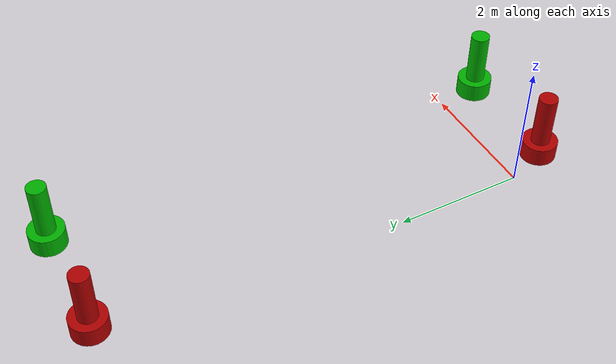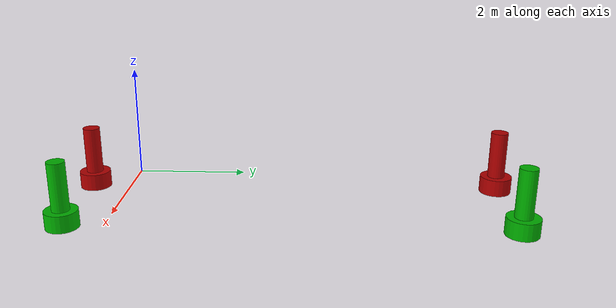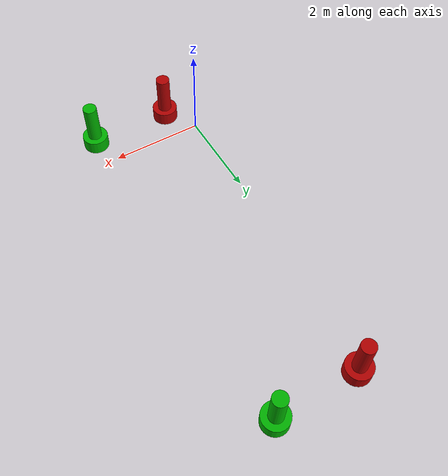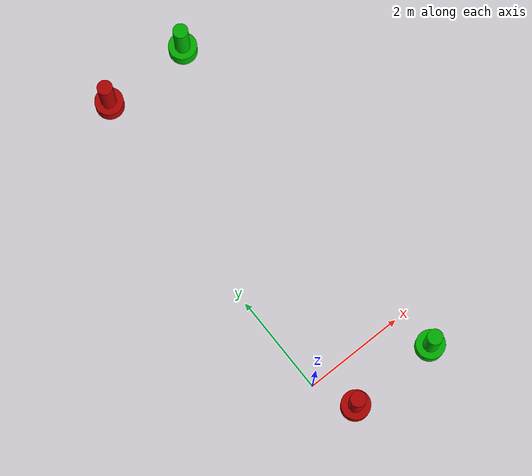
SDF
<sdf version="1.6">
 <world name="default">
  <include><uri>model://sun</uri></include>
  <gravity>0 0 -9.8</gravity>
  <magnetic_field>6e-06 2.3e-05 -4.2e-05</magnetic_field>
  <atmosphere type="adiabatic"/>
  <physics type="ode">
   <max_step_size>0.001</max_step_size>
   <real_time_factor>1</real_time_factor>
   <real_time_update_rate>1000</real_time_update_rate>
  </physics>
  <scene><ambient>0.4 0.4 0.4 1</ambient><background>0.7 0.7 0.7 1</background><shadows>1</shadows></scene>
  <spherical_coordinates>
   <surface_model>EARTH_WGS84</surface_model>
   <latitude_deg>0</latitude_deg>
   <longitude_deg>0</longitude_deg>
   <elevation>0</elevation>
   <heading_deg>0</heading_deg>
  </spherical_coordinates>
  <model name="Port Marker Buoy (red) #1">
   <link name="cylinder">
    <inertial>
     <mass>0.068793</mass>
     <inertia>
      <ixx>0.00543853</ixx>
      <ixy>0</ixy>
      <ixz>0</ixz>
      <iyy>0.00543853</iyy>
      <iyz>0</iyz>
      <izz>0.0006256</izz>
     </inertia>
    </inertial>
    <pose>0.396646 -0.775352 0.496472 0 -0 0</pose>
    <visual name="visual">
     <geometry><cylinder><radius>0.15</radius><length>1</length></cylinder></geometry>
     <material>
      <lighting>1</lighting>
      <script><uri>file://media/materials/scripts/gazebo.material</uri><name>Gazebo/Grey</name></script>
      <shader type="pixel"><normal_map>__default__</normal_map></shader>
      <ambient>0.3 0.3 0.3 1</ambient>
      <diffuse>0.7 0 0 1</diffuse>
      <specular>0.01 0.01 0.01 1</specular>
      <emissive>0 0 0 1</emissive>
     </material>
    </visual>
    <collision name="collision">
     <geometry><cylinder><radius>0.3</radius><length>0.945576</length></cylinder></geometry>
     <surface>
      <friction>
       <ode><mu>1</mu><mu2>1</mu2><fdir1>0 0 0</fdir1><slip1>0</slip1><slip2>0</slip2></ode>
       <torsional>
        <coefficient>1</coefficient>
        <patch_radius>0</patch_radius>
        <surface_radius>0</surface_radius>
        <use_patch_radius>1</use_patch_radius>
        <ode><slip>0</slip></ode>
       </torsional>
      </friction>
      <bounce><restitution_coefficient>0</restitution_coefficient><threshold>1e+06</threshold></bounce>
      <contact>
       <collide_without_contact>0</collide_without_contact>
       <collide_without_contact_bitmask>1</collide_without_contact_bitmask>
       <collide_bitmask>1</collide_bitmask>
       <ode>
        <soft_cfm>0</soft_cfm>
        <soft_erp>0.2</soft_erp>
        <kp>1e+13</kp>
        <kd>1</kd>
        <max_vel>0.01</max_vel>
        <min_depth>0</min_depth>
       </ode>
       <bullet>
        <split_impulse>1</split_impulse>
        <split_impulse_penetration_threshold>-0.01</split_impulse_penetration_threshold>
        <soft_cfm>0</soft_cfm>
        <soft_erp>0.2</soft_erp>
        <kp>1e+13</kp>
        <kd>1</kd>
       </bullet>
      </contact>
     </surface>
    </collision>
   </link>
   <link name="base">
    <inertial>
     <mass>0.0961519</mass>
     <inertia>
      <ixx>0.00264433</ixx>
      <ixy>0</ixy>
      <ixz>0</ixz>
      <iyy>0.00264433</iyy>
      <iyz>0</iyz>
      <izz>0.00382696</izz>
     </inertia>
    </inertial>
    <pose>0.399215 -0.772784 0.003528 0 -0 0</pose>
    <visual name="visual">
     <geometry><cylinder><radius>0.282139</radius><length>0.302013</length></cylinder></geometry>
     <material>
      <lighting>1</lighting>
      <script><uri>file://media/materials/scripts/gazebo.material</uri><name>Gazebo/Grey</name></script>
      <shader type="pixel"><normal_map>__default__</normal_map></shader>
      <ambient>0.3 0.3 0.3 1</ambient>
      <diffuse>0.7 0 0 1</diffuse>
      <specular>0.01 0.01 0.01 1</specular>
      <emissive>0 0 0 1</emissive>
     </material>
    </visual>
    <collision name="collision">
     <geometry><cylinder><radius>0.282139</radius><length>0.302013</length></cylinder></geometry>
     <surface>
      <friction>
       <ode><mu>1</mu><mu2>1</mu2><fdir1>0 0 0</fdir1><slip1>0</slip1><slip2>0</slip2></ode>
       <torsional>
        <coefficient>1</coefficient>
        <patch_radius>0</patch_radius>
        <surface_radius>0</surface_radius>
        <use_patch_radius>1</use_patch_radius>
        <ode><slip>0</slip></ode>
       </torsional>
      </friction>
      <bounce><restitution_coefficient>0</restitution_coefficient><threshold>1e+06</threshold></bounce>
      <contact>
       <collide_without_contact>0</collide_without_contact>
       <collide_without_contact_bitmask>1</collide_without_contact_bitmask>
       <collide_bitmask>1</collide_bitmask>
       <ode>
        <soft_cfm>0</soft_cfm>
        <soft_erp>0.2</soft_erp>
        <kp>1e+13</kp>
        <kd>1</kd>
        <max_vel>0.01</max_vel>
        <min_depth>0</min_depth>
       </ode>
       <bullet>
        <split_impulse>1</split_impulse>
        <split_impulse_penetration_threshold>-0.01</split_impulse_penetration_threshold>
        <soft_cfm>0</soft_cfm>
        <soft_erp>0.2</soft_erp>
        <kp>1e+13</kp>
        <kd>1</kd>
       </bullet>
      </contact>
     </surface>
    </collision>
   </link>
   <static>1</static>
  </model>
  <model name="Starboard Marker Buoy (green) #1">
   <link name="cylinder">
    <inertial>
     <mass>0.068793</mass>
     <inertia>
      <ixx>0.00543853</ixx>
      <ixy>0</ixy>
      <ixz>0</ixz>
      <iyy>0.00543853</iyy>
      <iyz>0</iyz>
      <izz>0.0006256</izz>
     </inertia>
    </inertial>
    <pose>0.396646 -0.775352 0.496472 0 -0 0</pose>
    <visual name="visual">
     <geometry><cylinder><radius>0.15</radius><length>1</length></cylinder></geometry>
     <material>
      <lighting>1</lighting>
      <script><uri>file://media/materials/scripts/gazebo.material</uri><name>Gazebo/Grey</name></script>
      <shader type="pixel"><normal_map>__default__</normal_map></shader>
      <ambient>0.3 0.3 0.3 1</ambient>
      <diffuse>0 0.7 0 1</diffuse>
      <specular>0.01 0.01 0.01 1</specular>
      <emissive>0 0 0 1</emissive>
     </material>
    </visual>
    <collision name="collision">
     <geometry><cylinder><radius>0.3</radius><length>0.945576</length></cylinder></geometry>
     <surface>
      <friction>
       <ode><mu>1</mu><mu2>1</mu2><fdir1>0 0 0</fdir1><slip1>0</slip1><slip2>0</slip2></ode>
       <torsional>
        <coefficient>1</coefficient>
        <patch_radius>0</patch_radius>
        <surface_radius>0</surface_radius>
        <use_patch_radius>1</use_patch_radius>
        <ode><slip>0</slip></ode>
       </torsional>
      </friction>
      <bounce><restitution_coefficient>0</restitution_coefficient><threshold>1e+06</threshold></bounce>
      <contact>
       <collide_without_contact>0</collide_without_contact>
       <collide_without_contact_bitmask>1</collide_without_contact_bitmask>
       <collide_bitmask>1</collide_bitmask>
       <ode>
        <soft_cfm>0</soft_cfm>
        <soft_erp>0.2</soft_erp>
        <kp>1e+13</kp>
        <kd>1</kd>
        <max_vel>0.01</max_vel>
        <min_depth>0</min_depth>
       </ode>
       <bullet>
        <split_impulse>1</split_impulse>
        <split_impulse_penetration_threshold>-0.01</split_impulse_penetration_threshold>
        <soft_cfm>0</soft_cfm>
        <soft_erp>0.2</soft_erp>
        <kp>1e+13</kp>
        <kd>1</kd>
       </bullet>
      </contact>
     </surface>
    </collision>
   </link>
   <link name="base">
    <inertial>
     <mass>0.0961519</mass>
     <inertia>
      <ixx>0.00264433</ixx>
      <ixy>0</ixy>
      <ixz>0</ixz>
      <iyy>0.00264433</iyy>
      <iyz>0</iyz>
      <izz>0.00382696</izz>
     </inertia>
    </inertial>
    <pose>0.399215 -0.772784 0.003528 0 -0 0</pose>
    <visual name="visual">
     <geometry><cylinder><radius>0.282139</radius><length>0.302013</length></cylinder></geometry>
     <material>
      <lighting>1</lighting>
      <script><uri>file://media/materials/scripts/gazebo.material</uri><name>Gazebo/Grey</name></script>
      <shader type="pixel"><normal_map>__default__</normal_map></shader>
      <ambient>0.3 0.3 0.3 1</ambient>
      <diffuse>0 0.7 0 1</diffuse>
      <specular>0.01 0.01 0.01 1</specular>
      <emissive>0 0 0 1</emissive>
     </material>
    </visual>
    <collision name="collision">
     <geometry><cylinder><radius>0.282139</radius><length>0.302013</length></cylinder></geometry>
     <surface>
      <friction>
       <ode><mu>1</mu><mu2>1</mu2><fdir1>0 0 0</fdir1><slip1>0</slip1><slip2>0</slip2></ode>
       <torsional>
        <coefficient>1</coefficient>
        <patch_radius>0</patch_radius>
        <surface_radius>0</surface_radius>
        <use_patch_radius>1</use_patch_radius>
        <ode><slip>0</slip></ode>
       </torsional>
      </friction>
      <bounce><restitution_coefficient>0</restitution_coefficient><threshold>1e+06</threshold></bounce>
      <contact>
       <collide_without_contact>0</collide_without_contact>
       <collide_without_contact_bitmask>1</collide_without_contact_bitmask>
       <collide_bitmask>1</collide_bitmask>
       <ode>
        <soft_cfm>0</soft_cfm>
        <soft_erp>0.2</soft_erp>
        <kp>1e+13</kp>
        <kd>1</kd>
        <max_vel>0.01</max_vel>
        <min_depth>0</min_depth>
       </ode>
       <bullet>
        <split_impulse>1</split_impulse>
        <split_impulse_penetration_threshold>-0.01</split_impulse_penetration_threshold>
        <soft_cfm>0</soft_cfm>
        <soft_erp>0.2</soft_erp>
        <kp>1e+13</kp>
        <kd>1</kd>
       </bullet>
      </contact>
     </surface>
    </collision>
   </link>
   <static>1</static>
   <pose>1.8 0 0 0 0 0</pose>
  </model>
  <model name="Port Marker Buoy (red) #2">
   <link name="cylinder">
    <inertial>
     <mass>0.068793</mass>
     <inertia>
      <ixx>0.00543853</ixx>
      <ixy>0</ixy>
      <ixz>0</ixz>
      <iyy>0.00543853</iyy>
      <iyz>0</iyz>
      <izz>0.0006256</izz>
     </inertia>
    </inertial>
    <pose>0.396646 -0.775352 0.496472 0 -0 0</pose>
    <visual name="visual">
     <geometry><cylinder><radius>0.15</radius><length>1</length></cylinder></geometry>
     <material>
      <lighting>1</lighting>
      <script><uri>file://media/materials/scripts/gazebo.material</uri><name>Gazebo/Grey</name></script>
      <shader type="pixel"><normal_map>__default__</normal_map></shader>
      <ambient>0.3 0.3 0.3 1</ambient>
      <diffuse>0.7 0 0 1</diffuse>
      <specular>0.01 0.01 0.01 1</specular>
      <emissive>0 0 0 1</emissive>
     </material>
    </visual>
    <collision name="collision">
     <geometry><cylinder><radius>0.3</radius><length>0.945576</length></cylinder></geometry>
     <surface>
      <friction>
       <ode><mu>1</mu><mu2>1</mu2><fdir1>0 0 0</fdir1><slip1>0</slip1><slip2>0</slip2></ode>
       <torsional>
        <coefficient>1</coefficient>
        <patch_radius>0</patch_radius>
        <surface_radius>0</surface_radius>
        <use_patch_radius>1</use_patch_radius>
        <ode><slip>0</slip></ode>
       </torsional>
      </friction>
      <bounce><restitution_coefficient>0</restitution_coefficient><threshold>1e+06</threshold></bounce>
      <contact>
       <collide_without_contact>0</collide_without_contact>
       <collide_without_contact_bitmask>1</collide_without_contact_bitmask>
       <collide_bitmask>1</collide_bitmask>
       <ode>
        <soft_cfm>0</soft_cfm>
        <soft_erp>0.2</soft_erp>
        <kp>1e+13</kp>
        <kd>1</kd>
        <max_vel>0.01</max_vel>
        <min_depth>0</min_depth>
       </ode>
       <bullet>
        <split_impulse>1</split_impulse>
        <split_impulse_penetration_threshold>-0.01</split_impulse_penetration_threshold>
        <soft_cfm>0</soft_cfm>
        <soft_erp>0.2</soft_erp>
        <kp>1e+13</kp>
        <kd>1</kd>
       </bullet>
      </contact>
     </surface>
    </collision>
   </link>
   <link name="base">
    <inertial>
     <mass>0.0961519</mass>
     <inertia>
      <ixx>0.00264433</ixx>
      <ixy>0</ixy>
      <ixz>0</ixz>
      <iyy>0.00264433</iyy>
      <iyz>0</iyz>
      <izz>0.00382696</izz>
     </inertia>
    </inertial>
    <pose>0.399215 -0.772784 0.003528 0 -0 0</pose>
    <visual name="visual">
     <geometry><cylinder><radius>0.282139</radius><length>0.302013</length></cylinder></geometry>
     <material>
      <lighting>1</lighting>
      <script><uri>file://media/materials/scripts/gazebo.material</uri><name>Gazebo/Grey</name></script>
      <shader type="pixel"><normal_map>__default__</normal_map></shader>
      <ambient>0.3 0.3 0.3 1</ambient>
      <diffuse>0.7 0 0 1</diffuse>
      <specular>0.01 0.01 0.01 1</specular>
      <emissive>0 0 0 1</emissive>
     </material>
    </visual>
    <collision name="collision">
     <geometry><cylinder><radius>0.282139</radius><length>0.302013</length></cylinder></geometry>
     <surface>
      <friction>
       <ode><mu>1</mu><mu2>1</mu2><fdir1>0 0 0</fdir1><slip1>0</slip1><slip2>0</slip2></ode>
       <torsional>
        <coefficient>1</coefficient>
        <patch_radius>0</patch_radius>
        <surface_radius>0</surface_radius>
        <use_patch_radius>1</use_patch_radius>
        <ode><slip>0</slip></ode>
       </torsional>
      </friction>
      <bounce><restitution_coefficient>0</restitution_coefficient><threshold>1e+06</threshold></bounce>
      <contact>
       <collide_without_contact>0</collide_without_contact>
       <collide_without_contact_bitmask>1</collide_without_contact_bitmask>
       <collide_bitmask>1</collide_bitmask>
       <ode>
        <soft_cfm>0</soft_cfm>
        <soft_erp>0.2</soft_erp>
        <kp>1e+13</kp>
        <kd>1</kd>
        <max_vel>0.01</max_vel>
        <min_depth>0</min_depth>
       </ode>
       <bullet>
        <split_impulse>1</split_impulse>
        <split_impulse_penetration_threshold>-0.01</split_impulse_penetration_threshold>
        <soft_cfm>0</soft_cfm>
        <soft_erp>0.2</soft_erp>
        <kp>1e+13</kp>
        <kd>1</kd>
       </bullet>
      </contact>
     </surface>
    </collision>
   </link>
   <static>1</static>
   <pose>0 7.5 0 0 0 0</pose>
  </model>
  <model name="Starboard Marker Buoy (green) #2">
   <link name="cylinder">
    <inertial>
     <mass>0.068793</mass>
     <inertia>
      <ixx>0.00543853</ixx>
      <ixy>0</ixy>
      <ixz>0</ixz>
      <iyy>0.00543853</iyy>
      <iyz>0</iyz>
      <izz>0.0006256</izz>
     </inertia>
    </inertial>
    <pose>0.396646 -0.775352 0.496472 0 -0 0</pose>
    <visual name="visual">
     <geometry><cylinder><radius>0.15</radius><length>1</length></cylinder></geometry>
     <material>
      <lighting>1</lighting>
      <script><uri>file://media/materials/scripts/gazebo.material</uri><name>Gazebo/Grey</name></script>
      <shader type="pixel"><normal_map>__default__</normal_map></shader>
      <ambient>0.3 0.3 0.3 1</ambient>
      <diffuse>0 0.7 0 1</diffuse>
      <specular>0.01 0.01 0.01 1</specular>
      <emissive>0 0 0 1</emissive>
     </material>
    </visual>
    <collision name="collision">
     <geometry><cylinder><radius>0.3</radius><length>0.945576</length></cylinder></geometry>
     <surface>
      <friction>
       <ode><mu>1</mu><mu2>1</mu2><fdir1>0 0 0</fdir1><slip1>0</slip1><slip2>0</slip2></ode>
       <torsional>
        <coefficient>1</coefficient>
        <patch_radius>0</patch_radius>
        <surface_radius>0</surface_radius>
        <use_patch_radius>1</use_patch_radius>
        <ode><slip>0</slip></ode>
       </torsional>
      </friction>
      <bounce><restitution_coefficient>0</restitution_coefficient><threshold>1e+06</threshold></bounce>
      <contact>
       <collide_without_contact>0</collide_without_contact>
       <collide_without_contact_bitmask>1</collide_without_contact_bitmask>
       <collide_bitmask>1</collide_bitmask>
       <ode>
        <soft_cfm>0</soft_cfm>
        <soft_erp>0.2</soft_erp>
        <kp>1e+13</kp>
        <kd>1</kd>
        <max_vel>0.01</max_vel>
        <min_depth>0</min_depth>
       </ode>
       <bullet>
        <split_impulse>1</split_impulse>
        <split_impulse_penetration_threshold>-0.01</split_impulse_penetration_threshold>
        <soft_cfm>0</soft_cfm>
        <soft_erp>0.2</soft_erp>
        <kp>1e+13</kp>
        <kd>1</kd>
       </bullet>
      </contact>
     </surface>
    </collision>
   </link>
   <link name="base">
    <inertial>
     <mass>0.0961519</mass>
     <inertia>
      <ixx>0.00264433</ixx>
      <ixy>0</ixy>
      <ixz>0</ixz>
      <iyy>0.00264433</iyy>
      <iyz>0</iyz>
      <izz>0.00382696</izz>
     </inertia>
    </inertial>
    <pose>0.399215 -0.772784 0.003528 0 -0 0</pose>
    <visual name="visual">
     <geometry><cylinder><radius>0.282139</radius><length>0.302013</length></cylinder></geometry>
     <material>
      <lighting>1</lighting>
      <script><uri>file://media/materials/scripts/gazebo.material</uri><name>Gazebo/Grey</name></script>
      <shader type="pixel"><normal_map>__default__</normal_map></shader>
      <ambient>0.3 0.3 0.3 1</ambient>
      <diffuse>0 0.7 0 1</diffuse>
      <specular>0.01 0.01 0.01 1</specular>
      <emissive>0 0 0 1</emissive>
     </material>
    </visual>
    <collision name="collision">
     <geometry><cylinder><radius>0.282139</radius><length>0.302013</length></cylinder></geometry>
     <surface>
      <friction>
       <ode><mu>1</mu><mu2>1</mu2><fdir1>0 0 0</fdir1><slip1>0</slip1><slip2>0</slip2></ode>
       <torsional>
        <coefficient>1</coefficient>
        <patch_radius>0</patch_radius>
        <surface_radius>0</surface_radius>
        <use_patch_radius>1</use_patch_radius>
        <ode><slip>0</slip></ode>
       </torsional>
      </friction>
      <bounce><restitution_coefficient>0</restitution_coefficient><threshold>1e+06</threshold></bounce>
      <contact>
       <collide_without_contact>0</collide_without_contact>
       <collide_without_contact_bitmask>1</collide_without_contact_bitmask>
       <collide_bitmask>1</collide_bitmask>
       <ode>
        <soft_cfm>0</soft_cfm>
        <soft_erp>0.2</soft_erp>
        <kp>1e+13</kp>
        <kd>1</kd>
        <max_vel>0.01</max_vel>
        <min_depth>0</min_depth>
       </ode>
       <bullet>
        <split_impulse>1</split_impulse>
        <split_impulse_penetration_threshold>-0.01</split_impulse_penetration_threshold>
        <soft_cfm>0</soft_cfm>
        <soft_erp>0.2</soft_erp>
        <kp>1e+13</kp>
        <kd>1</kd>
       </bullet>
      </contact>
     </surface>
    </collision>
   </link>
   <static>1</static>
   <pose>1.8 7.5 0 0 0 0</pose>
  </model>
 </world>
</sdf>
